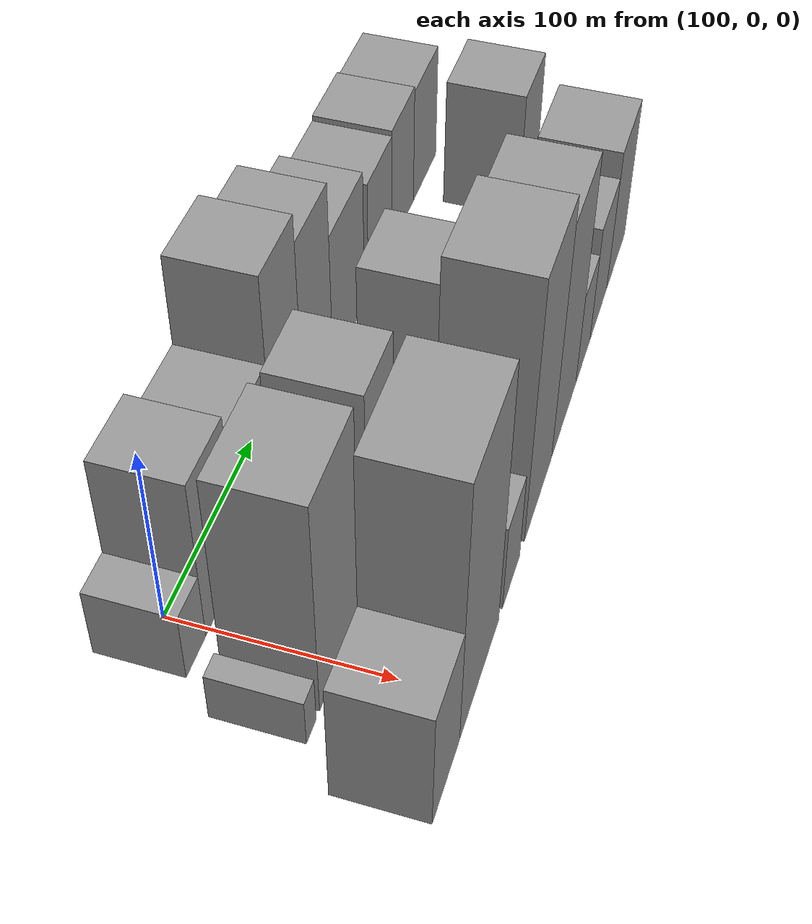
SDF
<sdf version="1.6">
 <world name="default">
  <model name="building_18">
   <static>1</static>
   <pose>100.0000 -13.8160 0 0.000000 0.000000 0.000000</pose>
   <link name="link">
    <pose>0 0 19.50 0 0 0</pose>
    <collision name="collision"><geometry><box><size>40.0000 20.5366 39.0000</size></box></geometry></collision>
    <visual name="visual">
     <cast_shadows>0</cast_shadows>
     <geometry><box><size>40.0000 20.5366 39.0000</size></box></geometry>
     <material>
      <script>
       <uri>model://grey_wall/materials/scripts</uri>
       <uri>model://grey_wall/materials/textures</uri>
       <name>vrc/grey_wall</name>
      </script>
     </material>
    </visual>
   </link>
  </model>
  <model name="building_19">
   <static>1</static>
   <pose>100.0000 14.2060 0 0.000000 0.000000 0.000000</pose>
   <link name="link">
    <pose>0 0 46.50 0 0 0</pose>
    <collision name="collision"><geometry><box><size>40.0000 35.5074 93.0000</size></box></geometry></collision>
    <visual name="visual">
     <cast_shadows>0</cast_shadows>
     <geometry><box><size>40.0000 35.5074 93.0000</size></box></geometry>
     <material>
      <script>
       <uri>model://grey_wall/materials/scripts</uri>
       <uri>model://grey_wall/materials/textures</uri>
       <name>vrc/grey_wall</name>
      </script>
     </material>
    </visual>
   </link>
  </model>
  <model name="building_20">
   <static>1</static>
   <pose>100.0000 53.9739 0 0.000000 0.000000 0.000000</pose>
   <link name="link">
    <pose>0 0 39.00 0 0 0</pose>
    <collision name="collision"><geometry><box><size>40.0000 44.0286 78.0000</size></box></geometry></collision>
    <visual name="visual">
     <cast_shadows>0</cast_shadows>
     <geometry><box><size>40.0000 44.0286 78.0000</size></box></geometry>
     <material>
      <script>
       <uri>model://grey_wall/materials/scripts</uri>
       <uri>model://grey_wall/materials/textures</uri>
       <name>vrc/grey_wall</name>
      </script>
     </material>
    </visual>
   </link>
  </model>
  <model name="building_21">
   <static>1</static>
   <pose>100.0000 95.1085 0 0.000000 0.000000 0.000000</pose>
   <link name="link">
    <pose>0 0 63.00 0 0 0</pose>
    <collision name="collision"><geometry><box><size>40.0000 38.2406 126.0000</size></box></geometry></collision>
    <visual name="visual">
     <cast_shadows>0</cast_shadows>
     <geometry><box><size>40.0000 38.2406 126.0000</size></box></geometry>
     <material>
      <script>
       <uri>model://grey_wall/materials/scripts</uri>
       <uri>model://grey_wall/materials/textures</uri>
       <name>vrc/grey_wall</name>
      </script>
     </material>
    </visual>
   </link>
  </model>
  <model name="building_22">
   <static>1</static>
   <pose>100.0000 134.1365 0 0.000000 0.000000 0.000000</pose>
   <link name="link">
    <pose>0 0 55.50 0 0 0</pose>
    <collision name="collision"><geometry><box><size>40.0000 39.8153 111.0000</size></box></geometry></collision>
    <visual name="visual">
     <cast_shadows>0</cast_shadows>
     <geometry><box><size>40.0000 39.8153 111.0000</size></box></geometry>
     <material>
      <script>
       <uri>model://grey_wall/materials/scripts</uri>
       <uri>model://grey_wall/materials/textures</uri>
       <name>vrc/grey_wall</name>
      </script>
     </material>
    </visual>
   </link>
  </model>
  <model name="building_23">
   <static>1</static>
   <pose>100.0000 177.5344 0 0.000000 0.000000 0.000000</pose>
   <link name="link">
    <pose>0 0 40.50 0 0 0</pose>
    <collision name="collision"><geometry><box><size>40.0000 46.9805 81.0000</size></box></geometry></collision>
    <visual name="visual">
     <cast_shadows>0</cast_shadows>
     <geometry><box><size>40.0000 46.9805 81.0000</size></box></geometry>
     <material>
      <script>
       <uri>model://grey_wall/materials/scripts</uri>
       <uri>model://grey_wall/materials/textures</uri>
       <name>vrc/grey_wall</name>
      </script>
     </material>
    </visual>
   </link>
  </model>
  <model name="building_24">
   <static>1</static>
   <pose>100.0000 226.1915 0 0.000000 0.000000 0.000000</pose>
   <link name="link">
    <pose>0 0 34.50 0 0 0</pose>
    <collision name="collision"><geometry><box><size>40.0000 38.3338 69.0000</size></box></geometry></collision>
    <visual name="visual">
     <cast_shadows>0</cast_shadows>
     <geometry><box><size>40.0000 38.3338 69.0000</size></box></geometry>
     <material>
      <script>
       <uri>model://grey_wall/materials/scripts</uri>
       <uri>model://grey_wall/materials/textures</uri>
       <name>vrc/grey_wall</name>
      </script>
     </material>
    </visual>
   </link>
  </model>
  <model name="building_25">
   <static>1</static>
   <pose>100.0000 263.8950 0 0.000000 0.000000 0.000000</pose>
   <link name="link">
    <pose>0 0 36.00 0 0 0</pose>
    <collision name="collision"><geometry><box><size>40.0000 37.0732 72.0000</size></box></geometry></collision>
    <visual name="visual">
     <cast_shadows>0</cast_shadows>
     <geometry><box><size>40.0000 37.0732 72.0000</size></box></geometry>
     <material>
      <script>
       <uri>model://grey_wall/materials/scripts</uri>
       <uri>model://grey_wall/materials/textures</uri>
       <name>vrc/grey_wall</name>
      </script>
     </material>
    </visual>
   </link>
  </model>
  <model name="building_26">
   <static>1</static>
   <pose>100.0000 302.8629 0 0.000000 0.000000 0.000000</pose>
   <link name="link">
    <pose>0 0 34.50 0 0 0</pose>
    <collision name="collision"><geometry><box><size>40.0000 40.8625 69.0000</size></box></geometry></collision>
    <visual name="visual">
     <cast_shadows>0</cast_shadows>
     <geometry><box><size>40.0000 40.8625 69.0000</size></box></geometry>
     <material>
      <script>
       <uri>model://grey_wall/materials/scripts</uri>
       <uri>model://grey_wall/materials/textures</uri>
       <name>vrc/grey_wall</name>
      </script>
     </material>
    </visual>
   </link>
  </model>
  <model name="building_52">
   <static>1</static>
   <pose>155.0000 -32.2822 0 0.000000 0.000000 0.000000</pose>
   <link name="link">
    <pose>0 0 13.50 0 0 0</pose>
    <collision name="collision"><geometry><box><size>40.0000 11.2220 27.0000</size></box></geometry></collision>
    <visual name="visual">
     <cast_shadows>0</cast_shadows>
     <geometry><box><size>40.0000 11.2220 27.0000</size></box></geometry>
     <material>
      <script>
       <uri>model://grey_wall/materials/scripts</uri>
       <uri>model://grey_wall/materials/textures</uri>
       <name>vrc/grey_wall</name>
      </script>
     </material>
    </visual>
   </link>
  </model>
  <model name="building_53">
   <static>1</static>
   <pose>155.0000 1.2587 0 0.000000 0.000000 0.000000</pose>
   <link name="link">
    <pose>0 0 61.50 0 0 0</pose>
    <collision name="collision"><geometry><box><size>40.0000 47.8598 123.0000</size></box></geometry></collision>
    <visual name="visual">
     <cast_shadows>0</cast_shadows>
     <geometry><box><size>40.0000 47.8598 123.0000</size></box></geometry>
     <material>
      <script>
       <uri>model://grey_wall/materials/scripts</uri>
       <uri>model://grey_wall/materials/textures</uri>
       <name>vrc/grey_wall</name>
      </script>
     </material>
    </visual>
   </link>
  </model>
  <model name="building_54">
   <static>1</static>
   <pose>155.0000 33.4385 0 0.000000 0.000000 0.000000</pose>
   <link name="link">
    <pose>0 0 7.50 0 0 0</pose>
    <collision name="collision"><geometry><box><size>40.0000 6.4998 15.0000</size></box></geometry></collision>
    <visual name="visual">
     <cast_shadows>0</cast_shadows>
     <geometry><box><size>40.0000 6.4998 15.0000</size></box></geometry>
     <material>
      <script>
       <uri>model://grey_wall/materials/scripts</uri>
       <uri>model://grey_wall/materials/textures</uri>
       <name>vrc/grey_wall</name>
      </script>
     </material>
    </visual>
   </link>
  </model>
  <model name="building_55">
   <static>1</static>
   <pose>155.0000 54.2656 0 0.000000 0.000000 0.000000</pose>
   <link name="link">
    <pose>0 0 58.50 0 0 0</pose>
    <collision name="collision"><geometry><box><size>40.0000 35.1544 117.0000</size></box></geometry></collision>
    <visual name="visual">
     <cast_shadows>0</cast_shadows>
     <geometry><box><size>40.0000 35.1544 117.0000</size></box></geometry>
     <material>
      <script>
       <uri>model://grey_wall/materials/scripts</uri>
       <uri>model://grey_wall/materials/textures</uri>
       <name>vrc/grey_wall</name>
      </script>
     </material>
    </visual>
   </link>
  </model>
  <model name="building_56">
   <static>1</static>
   <pose>155.0000 166.3739 0 0.000000 0.000000 0.000000</pose>
   <link name="link">
    <pose>0 0 37.50 0 0 0</pose>
    <collision name="collision"><geometry><box><size>40.0000 41.0208 75.0000</size></box></geometry></collision>
    <visual name="visual">
     <cast_shadows>0</cast_shadows>
     <geometry><box><size>40.0000 41.0208 75.0000</size></box></geometry>
     <material>
      <script>
       <uri>model://grey_wall/materials/scripts</uri>
       <uri>model://grey_wall/materials/textures</uri>
       <name>vrc/grey_wall</name>
      </script>
     </material>
    </visual>
   </link>
  </model>
  <model name="building_57">
   <static>1</static>
   <pose>155.0000 203.3350 0 0.000000 0.000000 0.000000</pose>
   <link name="link">
    <pose>0 0 19.50 0 0 0</pose>
    <collision name="collision"><geometry><box><size>40.0000 20.9014 39.0000</size></box></geometry></collision>
    <visual name="visual">
     <cast_shadows>0</cast_shadows>
     <geometry><box><size>40.0000 20.9014 39.0000</size></box></geometry>
     <material>
      <script>
       <uri>model://grey_wall/materials/scripts</uri>
       <uri>model://grey_wall/materials/textures</uri>
       <name>vrc/grey_wall</name>
      </script>
     </material>
    </visual>
   </link>
  </model>
  <model name="building_58">
   <static>1</static>
   <pose>155.0000 306.0167 0 0.000000 0.000000 0.000000</pose>
   <link name="link">
    <pose>0 0 37.50 0 0 0</pose>
    <collision name="collision"><geometry><box><size>40.0000 38.8206 75.0000</size></box></geometry></collision>
    <visual name="visual">
     <cast_shadows>0</cast_shadows>
     <geometry><box><size>40.0000 38.8206 75.0000</size></box></geometry>
     <material>
      <script>
       <uri>model://grey_wall/materials/scripts</uri>
       <uri>model://grey_wall/materials/textures</uri>
       <name>vrc/grey_wall</name>
      </script>
     </material>
    </visual>
   </link>
  </model>
  <model name="building_81">
   <static>1</static>
   <pose>210.0000 -37.1989 0 0.000000 0.000000 0.000000</pose>
   <link name="link">
    <pose>0 0 34.50 0 0 0</pose>
    <collision name="collision"><geometry><box><size>40.0000 36.9018 69.0000</size></box></geometry></collision>
    <visual name="visual">
     <cast_shadows>0</cast_shadows>
     <geometry><box><size>40.0000 36.9018 69.0000</size></box></geometry>
     <material>
      <script>
       <uri>model://grey_wall/materials/scripts</uri>
       <uri>model://grey_wall/materials/textures</uri>
       <name>vrc/grey_wall</name>
      </script>
     </material>
    </visual>
   </link>
  </model>
  <model name="building_82">
   <static>1</static>
   <pose>210.0000 10.2587 0 0.000000 0.000000 0.000000</pose>
   <link name="link">
    <pose>0 0 75.00 0 0 0</pose>
    <collision name="collision"><geometry><box><size>40.0000 58.0136 150.0000</size></box></geometry></collision>
    <visual name="visual">
     <cast_shadows>0</cast_shadows>
     <geometry><box><size>40.0000 58.0136 150.0000</size></box></geometry>
     <material>
      <script>
       <uri>model://grey_wall/materials/scripts</uri>
       <uri>model://grey_wall/materials/textures</uri>
       <name>vrc/grey_wall</name>
      </script>
     </material>
    </visual>
   </link>
  </model>
  <model name="building_83">
   <static>1</static>
   <pose>210.0000 59.4654 0 0.000000 0.000000 0.000000</pose>
   <link name="link">
    <pose>0 0 25.50 0 0 0</pose>
    <collision name="collision"><geometry><box><size>40.0000 28.3996 51.0000</size></box></geometry></collision>
    <visual name="visual">
     <cast_shadows>0</cast_shadows>
     <geometry><box><size>40.0000 28.3996 51.0000</size></box></geometry>
     <material>
      <script>
       <uri>model://grey_wall/materials/scripts</uri>
       <uri>model://grey_wall/materials/textures</uri>
       <name>vrc/grey_wall</name>
      </script>
     </material>
    </visual>
   </link>
  </model>
  <model name="building_84">
   <static>1</static>
   <pose>210.0000 106.3405 0 0.000000 0.000000 0.000000</pose>
   <link name="link">
    <pose>0 0 75.00 0 0 0</pose>
    <collision name="collision"><geometry><box><size>40.0000 49.3507 150.0000</size></box></geometry></collision>
    <visual name="visual">
     <cast_shadows>0</cast_shadows>
     <geometry><box><size>40.0000 49.3507 150.0000</size></box></geometry>
     <material>
      <script>
       <uri>model://grey_wall/materials/scripts</uri>
       <uri>model://grey_wall/materials/textures</uri>
       <name>vrc/grey_wall</name>
      </script>
     </material>
    </visual>
   </link>
  </model>
  <model name="building_85">
   <static>1</static>
   <pose>210.0000 154.8800 0 0.000000 0.000000 0.000000</pose>
   <link name="link">
    <pose>0 0 67.50 0 0 0</pose>
    <collision name="collision"><geometry><box><size>40.0000 47.7283 135.0000</size></box></geometry></collision>
    <visual name="visual">
     <cast_shadows>0</cast_shadows>
     <geometry><box><size>40.0000 47.7283 135.0000</size></box></geometry>
     <material>
      <script>
       <uri>model://grey_wall/materials/scripts</uri>
       <uri>model://grey_wall/materials/textures</uri>
       <name>vrc/grey_wall</name>
      </script>
     </material>
    </visual>
   </link>
  </model>
  <model name="building_86">
   <static>1</static>
   <pose>210.0000 193.6243 0 0.000000 0.000000 0.000000</pose>
   <link name="link">
    <pose>0 0 27.00 0 0 0</pose>
    <collision name="collision"><geometry><box><size>40.0000 29.7602 54.0000</size></box></geometry></collision>
    <visual name="visual">
     <cast_shadows>0</cast_shadows>
     <geometry><box><size>40.0000 29.7602 54.0000</size></box></geometry>
     <material>
      <script>
       <uri>model://grey_wall/materials/scripts</uri>
       <uri>model://grey_wall/materials/textures</uri>
       <name>vrc/grey_wall</name>
      </script>
     </material>
    </visual>
   </link>
  </model>
  <model name="building_87">
   <static>1</static>
   <pose>210.0000 227.3108 0 0.000000 0.000000 0.000000</pose>
   <link name="link">
    <pose>0 0 34.50 0 0 0</pose>
    <collision name="collision"><geometry><box><size>40.0000 37.6129 69.0000</size></box></geometry></collision>
    <visual name="visual">
     <cast_shadows>0</cast_shadows>
     <geometry><box><size>40.0000 37.6129 69.0000</size></box></geometry>
     <material>
      <script>
       <uri>model://grey_wall/materials/scripts</uri>
       <uri>model://grey_wall/materials/textures</uri>
       <name>vrc/grey_wall</name>
      </script>
     </material>
    </visual>
   </link>
  </model>
  <model name="building_88">
   <static>1</static>
   <pose>210.0000 267.5864 0 0.000000 0.000000 0.000000</pose>
   <link name="link">
    <pose>0 0 42.00 0 0 0</pose>
    <collision name="collision"><geometry><box><size>40.0000 42.9384 84.0000</size></box></geometry></collision>
    <visual name="visual">
     <cast_shadows>0</cast_shadows>
     <geometry><box><size>40.0000 42.9384 84.0000</size></box></geometry>
     <material>
      <script>
       <uri>model://grey_wall/materials/scripts</uri>
       <uri>model://grey_wall/materials/textures</uri>
       <name>vrc/grey_wall</name>
      </script>
     </material>
    </visual>
   </link>
  </model>
 </world>
</sdf>
